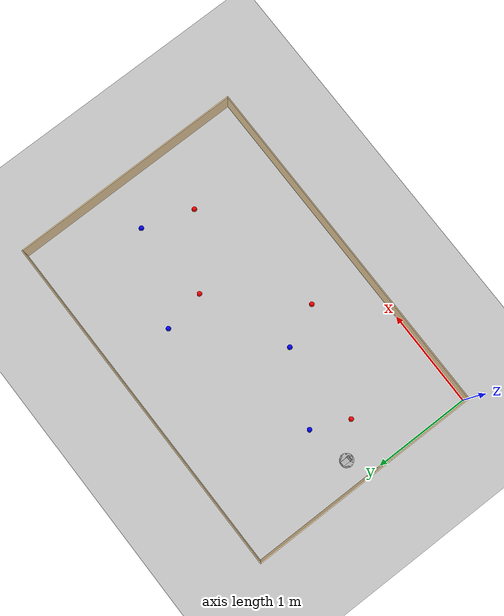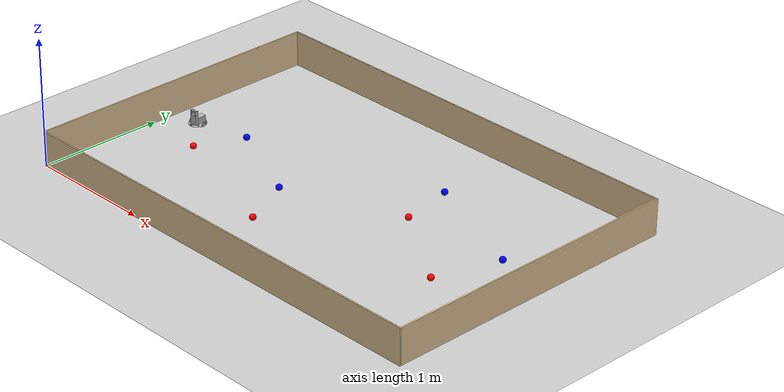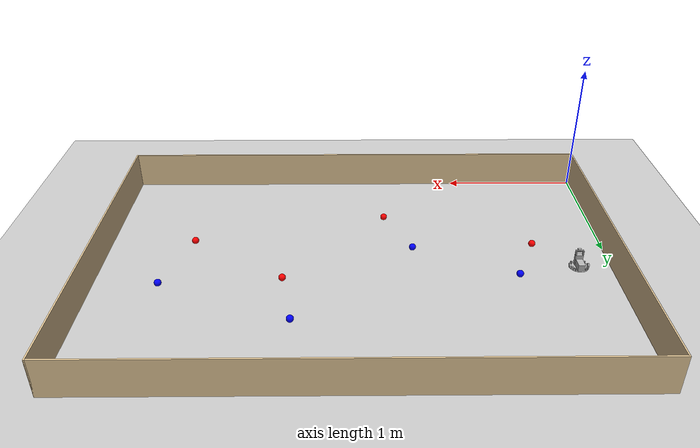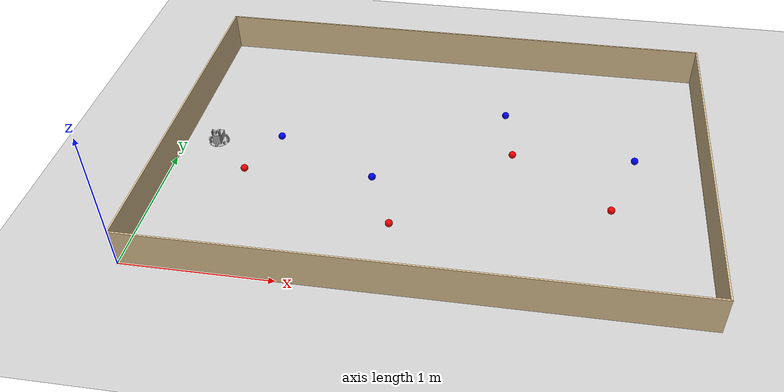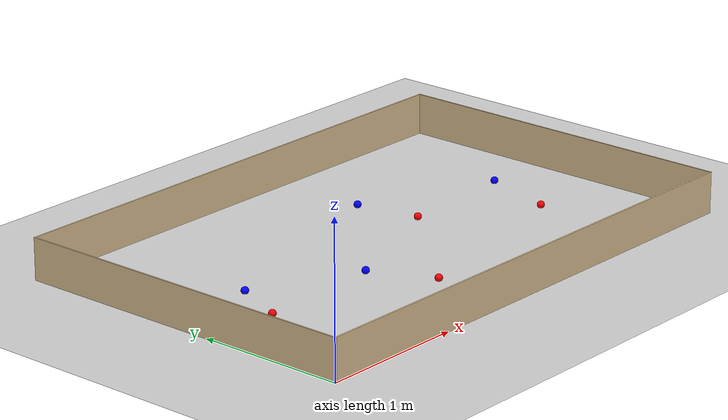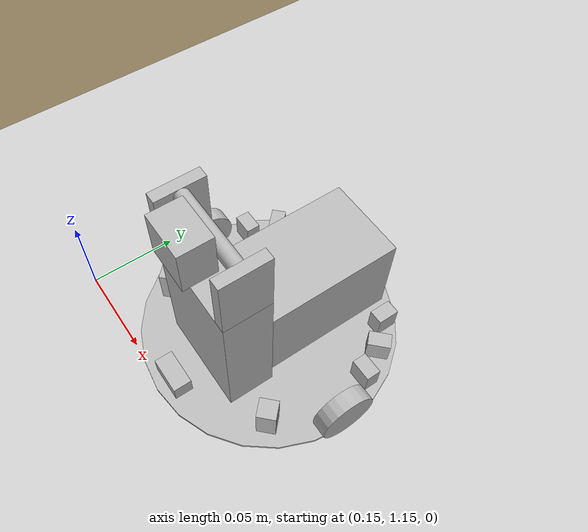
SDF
<?xml version="1.0" ?>
<sdf version="1.4">
  <world name="default">
    <scene>
      <ambient>0.5 0.5 0.5 1.0</ambient>
      <shadows>0</shadows>
    </scene>
    <include>
      <uri>model://ground_plane</uri>
    </include>
    <include>
      <uri>model://sun</uri>
    </include>
    <include>
      <uri>model://iti0201_robot</uri>
      <name>iti0201_robot</name>
      <pose>0.232 1.216 0 0 0 -1.57</pose> <!-- this is the robot's starting position, if you know where it should be, you can change this -->
    </include>

    <model name='sphere_blue1'>
      <static>0</static>
      <link name='body'>
        <inertial>
          <mass>0.06</mass>
          <inertia>
            <ixx>0.001</ixx>
            <iyy>0.001</iyy>
            <izz>0.001</izz>
            <ixy>0</ixy>
            <ixz>0</ixz>
            <iyz>0</iyz>
          </inertia>
          <pose>0 0 0 0 -0 0</pose>
        </inertial>
        <visual name='vis'>
          <geometry>
            <mesh>
              <uri>model://sphere_blue/sphere.dae</uri>
            </mesh>
          </geometry>
        </visual>
        <collision name='col'>
          <pose>0 0 0.025 0 -0 0</pose>
          <geometry>
            <box>
              <size>0.05 0.05 0.05</size>
            </box>
          </geometry>
          <surface>
            <friction>
              <ode>
                <mu>0.1</mu>
                <mu2>0.1</mu2>
                <slip1>0.9</slip1>
                <slip2>0.9</slip2>
              </ode>
              <torsional>
                <ode/>
              </torsional>
            </friction>
            <contact>
              <ode/>
            </contact>
            <bounce/>
          </surface>
          <max_contacts>10</max_contacts>
        </collision>
        <self_collide>0</self_collide>
        <enable_wind>0</enable_wind>
        <kinematic>0</kinematic>
      </link>
      <pose>0.66839 1.314293 0 0 -0 0</pose>
    </model>
    <model name='sphere_red1'>
      <static>0</static>
      <link name='body'>
        <inertial>
          <mass>0.06</mass>
          <inertia>
            <ixx>0.001</ixx>
            <iyy>0.001</iyy>
            <izz>0.001</izz>
            <ixy>0</ixy>
            <ixz>0</ixz>
            <iyz>0</iyz>
          </inertia>
          <pose>0 0 0 0 -0 0</pose>
        </inertial>
        <visual name='vis'>
          <geometry>
            <mesh>
              <uri>model://sphere_red/sphere.dae</uri>
            </mesh>
          </geometry>
        </visual>
        <collision name='col'>
          <pose>0 0 0.025 0 -0 0</pose>
          <geometry>
            <box>
              <size>0.05 0.05 0.05</size>
            </box>
          </geometry>
          <surface>
            <friction>
              <ode>
                <mu>0.1</mu>
                <mu2>0.1</mu2>
                <slip1>0.9</slip1>
                <slip2>0.9</slip2>
              </ode>
              <torsional>
                <ode/>
              </torsional>
            </friction>
            <contact>
              <ode/>
            </contact>
            <bounce/>
          </surface>
          <max_contacts>10</max_contacts>
        </collision>
        <self_collide>0</self_collide>
        <enable_wind>0</enable_wind>
        <kinematic>0</kinematic>
      </link>
      <pose>0.507113 0.943609 0 0 -0 0</pose>
    </model>
    <model name='sphere_blue2'>
      <static>0</static>
      <link name='body'>
        <inertial>
          <mass>0.06</mass>
          <inertia>
            <ixx>0.001</ixx>
            <iyy>0.001</iyy>
            <izz>0.001</izz>
            <ixy>0</ixy>
            <ixz>0</ixz>
            <iyz>0</iyz>
          </inertia>
          <pose>0 0 0 0 -0 0</pose>
        </inertial>
        <visual name='vis'>
          <geometry>
            <mesh>
              <uri>model://sphere_blue/sphere.dae</uri>
            </mesh>
          </geometry>
        </visual>
        <collision name='col'>
          <pose>0 0 0.025 0 -0 0</pose>
          <geometry>
            <box>
              <size>0.05 0.05 0.05</size>
            </box>
          </geometry>
          <surface>
            <friction>
              <ode>
                <mu>0.1</mu>
                <mu2>0.1</mu2>
                <slip1>0.9</slip1>
                <slip2>0.9</slip2>
              </ode>
              <torsional>
                <ode/>
              </torsional>
            </friction>
            <contact>
              <ode/>
            </contact>
            <bounce/>
          </surface>
          <max_contacts>10</max_contacts>
        </collision>
        <self_collide>0</self_collide>
        <enable_wind>0</enable_wind>
        <kinematic>0</kinematic>
      </link>
      <pose>1.39371 0.981180 0 0 -0 0</pose>
    </model>
    <model name='sphere_red2'>
      <static>0</static>
      <link name='body'>
        <inertial>
          <mass>0.06</mass>
          <inertia>
            <ixx>0.001</ixx>
            <iyy>0.001</iyy>
            <izz>0.001</izz>
            <ixy>0</ixy>
            <ixz>0</ixz>
            <iyz>0</iyz>
          </inertia>
          <pose>0 0 0 0 -0 0</pose>
        </inertial>
        <visual name='vis'>
          <geometry>
            <mesh>
              <uri>model://sphere_red/sphere.dae</uri>
            </mesh>
          </geometry>
        </visual>
        <collision name='col'>
          <pose>0 0 0.025 0 -0 0</pose>
          <geometry>
            <box>
              <size>0.05 0.05 0.05</size>
            </box>
          </geometry>
          <surface>
            <friction>
              <ode>
                <mu>0.1</mu>
                <mu2>0.1</mu2>
                <slip1>0.9</slip1>
                <slip2>0.9</slip2>
              </ode>
              <torsional>
                <ode/>
              </torsional>
            </friction>
            <contact>
              <ode/>
            </contact>
            <bounce/>
          </surface>
          <max_contacts>10</max_contacts>
        </collision>
        <self_collide>0</self_collide>
        <enable_wind>0</enable_wind>
        <kinematic>0</kinematic>
      </link>
      <pose>1.589068 0.562921 0 0 -0 0</pose>
    </model>
    <model name='sphere_blue3'>
      <static>0</static>
      <link name='body'>
        <inertial>
          <mass>0.06</mass>
          <inertia>
            <ixx>0.001</ixx>
            <iyy>0.001</iyy>
            <izz>0.001</izz>
            <ixy>0</ixy>
            <ixz>0</ixz>
            <iyz>0</iyz>
          </inertia>
          <pose>0 0 0 0 -0 0</pose>
        </inertial>
        <visual name='vis'>
          <geometry>
            <mesh>
              <uri>model://sphere_blue/sphere.dae</uri>
            </mesh>
          </geometry>
        </visual>
        <collision name='col'>
          <pose>0 0 0.025 0 -0 0</pose>
          <geometry>
            <box>
              <size>0.05 0.05 0.05</size>
            </box>
          </geometry>
          <surface>
            <friction>
              <ode>
                <mu>0.1</mu>
                <mu2>0.1</mu2>
                <slip1>0.9</slip1>
                <slip2>0.9</slip2>
              </ode>
              <torsional>
                <ode/>
              </torsional>
            </friction>
            <contact>
              <ode/>
            </contact>
            <bounce/>
          </surface>
          <max_contacts>10</max_contacts>
        </collision>
        <self_collide>0</self_collide>
        <enable_wind>0</enable_wind>
        <kinematic>0</kinematic>
      </link>
      <pose>2.237236 1.780654 0 0 -0 0</pose>
    </model>
    <model name='sphere_red3'>
      <static>0</static>
      <link name='body'>
        <inertial>
          <mass>0.06</mass>
          <inertia>
            <ixx>0.001</ixx>
            <iyy>0.001</iyy>
            <izz>0.001</izz>
            <ixy>0</ixy>
            <ixz>0</ixz>
            <iyz>0</iyz>
          </inertia>
          <pose>0 0 0 0 -0 0</pose>
        </inertial>
        <visual name='vis'>
          <geometry>
            <mesh>
              <uri>model://sphere_red/sphere.dae</uri>
            </mesh>
          </geometry>
        </visual>
        <collision name='col'>
          <pose>0 0 0.025 0 -0 0</pose>
          <geometry>
            <box>
              <size>0.05 0.05 0.05</size>
            </box>
          </geometry>
          <surface>
            <friction>
              <ode>
                <mu>0.1</mu>
                <mu2>0.1</mu2>
                <slip1>0.9</slip1>
                <slip2>0.9</slip2>
              </ode>
              <torsional>
                <ode/>
              </torsional>
            </friction>
            <contact>
              <ode/>
            </contact>
            <bounce/>
          </surface>
          <max_contacts>10</max_contacts>
        </collision>
        <self_collide>0</self_collide>
        <enable_wind>0</enable_wind>
        <kinematic>0</kinematic>
      </link>
      <pose>2.321770 1.344883 0 0 -0 0</pose>
    </model>
    <model name='sphere_blue4'>
      <static>0</static>
      <link name='body'>
        <inertial>
          <mass>0.06</mass>
          <inertia>
            <ixx>0.001</ixx>
            <iyy>0.001</iyy>
            <izz>0.001</izz>
            <ixy>0</ixy>
            <ixz>0</ixz>
            <iyz>0</iyz>
          </inertia>
          <pose>0 0 0 0 -0 0</pose>
        </inertial>
        <visual name='vis'>
          <geometry>
            <mesh>
              <uri>model://sphere_blue/sphere.dae</uri>
            </mesh>
          </geometry>
        </visual>
        <collision name='col'>
          <pose>0 0 0.025 0 -0 0</pose>
          <geometry>
            <box>
              <size>0.05 0.05 0.05</size>
            </box>
          </geometry>
          <surface>
            <friction>
              <ode>
                <mu>0.1</mu>
                <mu2>0.1</mu2>
                <slip1>0.9</slip1>
                <slip2>0.9</slip2>
              </ode>
              <torsional>
                <ode/>
              </torsional>
            </friction>
            <contact>
              <ode/>
            </contact>
            <bounce/>
          </surface>
          <max_contacts>10</max_contacts>
        </collision>
        <self_collide>0</self_collide>
        <enable_wind>0</enable_wind>
        <kinematic>0</kinematic>
      </link>
      <pose>3.16757 1.39786 0 0 -0 0</pose>
    </model>
    <model name='sphere_red4'>
      <static>0</static>
      <link name='body'>
        <inertial>
          <mass>0.06</mass>
          <inertia>
            <ixx>0.001</ixx>
            <iyy>0.001</iyy>
            <izz>0.001</izz>
            <ixy>0</ixy>
            <ixz>0</ixz>
            <iyz>0</iyz>
          </inertia>
          <pose>0 0 0 0 -0 0</pose>
        </inertial>
        <visual name='vis'>
          <geometry>
            <mesh>
              <uri>model://sphere_red/sphere.dae</uri>
            </mesh>
          </geometry>
        </visual>
        <collision name='col'>
          <pose>0 0 0.025 0 -0 0</pose>
          <geometry>
            <box>
              <size>0.05 0.05 0.05</size>
            </box>
          </geometry>
          <surface>
            <friction>
              <ode>
                <mu>0.1</mu>
                <mu2>0.1</mu2>
                <slip1>0.9</slip1>
                <slip2>0.9</slip2>
              </ode>
              <torsional>
                <ode/>
              </torsional>
            </friction>
            <contact>
              <ode/>
            </contact>
            <bounce/>
          </surface>
          <max_contacts>10</max_contacts>
        </collision>
        <self_collide>0</self_collide>
        <enable_wind>0</enable_wind>
        <kinematic>0</kinematic>
      </link>
      <pose>3.00375 0.883783 0 0 -0 0</pose>
    </model>

    <model name='outer_box'>
    <pose frame=''>1.81 1.21 0 0 -0 0</pose>
    <link name='Wall_0'>
      <collision name='Wall_0_Collision'>
        <geometry>
          <box>
            <size>3.63 0.01 0.28</size>
          </box>
        </geometry>
        <pose frame=''>0 0 0.14 0 -0 0</pose>
      </collision>
      <visual name='Wall_0_Visual'>
        <pose frame=''>0 0 0.14 0 -0 0</pose>
        <geometry>
          <box>
            <size>3.63 0.01 0.28</size>
          </box>
        </geometry>
        <material>
          <script>
            <uri>file://media/materials/scripts/gazebo.material</uri>
            <name>Gazebo/Grey</name>
          </script>
          <ambient>0.921569 0.807843 0.615686 1</ambient>
        </material>
        <meta>
          <layer>0</layer>
        </meta>
      </visual>
      <pose frame=''>0 1.21 0 0 -0 0</pose>
    </link>
    <link name='Wall_2'>
      <collision name='Wall_2_Collision'>
        <geometry>
          <box>
            <size>2.43 0.01 0.28</size>
          </box>
        </geometry>
        <pose frame=''>0 0 0.14 0 -0 0</pose>
      </collision>
      <visual name='Wall_2_Visual'>
        <pose frame=''>0 0 0.14 0 -0 0</pose>
        <geometry>
          <box>
            <size>2.43 0.01 0.28</size>
          </box>
        </geometry>
        <material>
          <script>
            <uri>file://media/materials/scripts/gazebo.material</uri>
            <name>Gazebo/Grey</name>
          </script>
          <ambient>0.921569 0.807843 0.615686 1</ambient>
        </material>
        <meta>
          <layer>0</layer>
        </meta>
      </visual>
      <pose frame=''>1.81 0 0 0 0 -1.5708</pose>
    </link>
    <link name='Wall_4'>
      <collision name='Wall_4_Collision'>
        <geometry>
          <box>
            <size>3.63 0.01 0.28</size>
          </box>
        </geometry>
        <pose frame=''>0 0 0.14 0 -0 0</pose>
      </collision>
      <visual name='Wall_4_Visual'>
        <pose frame=''>0 0 0.14 0 -0 0</pose>
        <geometry>
          <box>
            <size>3.63 0.01 0.28</size>
          </box>
        </geometry>
        <material>
          <script>
            <uri>file://media/materials/scripts/gazebo.material</uri>
            <name>Gazebo/Grey</name>
          </script>
          <ambient>0.921569 0.807843 0.615686 1</ambient>
        </material>
        <meta>
          <layer>0</layer>
        </meta>
      </visual>
      <pose frame=''>0 -1.21 0 0 -0 3.14159</pose>
    </link>
    <link name='Wall_6'>
      <collision name='Wall_6_Collision'>
        <geometry>
          <box>
            <size>2.43 0.01 0.28</size>
          </box>
        </geometry>
        <pose frame=''>0 0 0.14 0 -0 0</pose>
      </collision>
      <visual name='Wall_6_Visual'>
        <pose frame=''>0 0 0.14 0 -0 0</pose>
        <geometry>
          <box>
            <size>2.43 0.01 0.28</size>
          </box>
        </geometry>
        <material>
          <script>
            <uri>file://media/materials/scripts/gazebo.material</uri>
            <name>Gazebo/Grey</name>
          </script>
          <ambient>0.921569 0.807843 0.615686 1</ambient>
        </material>
        <meta>
          <layer>0</layer>
        </meta>
      </visual>
      <pose frame=''>-1.81 0 0 0 -0 1.5708</pose>
    </link>
    <static>1</static>
  </model>

  </world>
</sdf>

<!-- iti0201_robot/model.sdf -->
<sdf version='1.4'>
  	<model name="iti0201_robot">
  		<static>false</static>

      <!-- LINK 1: Chassis, connect wheels and base to this. -->
      <link name="chassis">
        <pose>0 0 0.0152 0 0 0</pose>
      </link>

      <joint type="fixed" name="chassis_to_base">
        <pose>0 0 0 0 0 0</pose>
        <child>base</child>
        <parent>chassis</parent>
        <axis>
          <xyz>0 0 0</xyz>
        </axis>
      </joint>

      <!-- LINK 2: Base, contains caster wheels, base, brainbox and base for camera stand. -->
  		<link name='base'>
        <pose>0 0 .006 0 0 0</pose>

          <inertial>
            <mass>50</mass>
          </inertial>

          <collision name='base_collision'>
            <geometry>
              <cylinder>
                <radius>.069912</radius>
                <length>0.001591</length>
              </cylinder>
            </geometry>
          </collision>

          <visual name='base_visual'>
            <geometry>
              <cylinder>
                <radius>.069912</radius>
                <length>0.001591</length>
              </cylinder>
            </geometry>
          </visual>

          <collision name="brainbox_collision">
            <pose>-0.022 0 0.02641535 0 0 0</pose>
            <geometry>
              <box>
                <size>.077304 .0468221 .0512397</size>
              </box>
            </geometry>
          </collision>

          <visual name="brainbox_visual">
            <pose>-0.022 0 0.02641535 0 0 0</pose>
            <geometry>
              <box>
                <size>.077304 .0468221 .0512397</size>
              </box>
            </geometry>
          </visual>

          <collision name="camera_stand_collision">
            <pose>0.02940475 0 0.0402758 0 0 0</pose>
            <geometry>
              <box>
                <size>.0255021 .0553499 .0789606</size>
              </box>
            </geometry>
          </collision>

          <visual name="camera_stand_visual">
            <pose>0.02940475 0 0.0402758 0 0 0</pose>
            <geometry>
              <box>
                <size>.0255021 .0553499 .0789606</size>
              </box>
            </geometry>
          </visual>

          <collision name="camera_stand_right_wall_collision">
          <pose>0.02940475 -0.02467495 0.0970561 0 0 0</pose>
            <geometry>
              <box>
                <size>.0255021 .006 .0346</size>
              </box>
            </geometry>
          </collision>

          <visual name="camera_stand_right_wall_visual">
          <pose>0.02940475 -0.02467495 0.0970561 0 0 0</pose>
            <geometry>
              <box>
                <size>.0255021 .006 .0346</size>
              </box>
            </geometry>
          </visual>

          <collision name="camera_stand_left_wall_collision">
          <pose>0.02940475 0.02467495 0.0970561 0 0 0</pose>
            <geometry>
              <box>
                <size>.0255021 .006 .0346</size>
              </box>
            </geometry>
          </collision>

          <visual name="camera_stand_left_wall_visual">
          <pose>0.02940475 0.02467495 0.0970561 0 0 0</pose>
            <geometry>
              <box>
                <size>.0255021 .006 .0346</size>
              </box>
            </geometry>
          </visual>

          <collision name='front_caster_collision'>
            <pose>0.035 0 -0.001 0 0 0</pose>
            <geometry>
                <sphere>
                <radius>.004648</radius>
              </sphere>
            </geometry>

            <surface>
              <friction>
                <ode>
                  <mu>0</mu>
                  <mu2>0</mu2>
                  <slip1>1.0</slip1>
                  <slip2>1.0</slip2>
                </ode>
              </friction>
            </surface>
          </collision>

          <visual name='front_caster_visual'>
            <pose>0.035 0 -0.001 0 0 0</pose>
            <geometry>
              <sphere>
                <radius>.004648</radius>
              </sphere>
            </geometry>
          </visual>

          <collision name='rear_caster_collision'>
            <pose>-0.035 0 -0.001 0 0 0</pose>
            <geometry>
                <sphere>
                <radius>.004648</radius>
              </sphere>
            </geometry>

            <surface>
              <friction>
                <ode>
                  <mu>0</mu>
                  <mu2>0</mu2>
                  <slip1>1.0</slip1>
                  <slip2>1.0</slip2>
                </ode>
              </friction>
            </surface>
          </collision>

          <visual name='rear_caster_visual'>
            <pose>-0.035 0 -0.001 0 0 0</pose>
            <geometry>
              <sphere>
                <radius>.004648</radius>
              </sphere>
            </geometry>
          </visual>
      </link>

      <!-- LINKS 3-11: Infrared sensors. -->
      <link name="front_right_45deg_ir">
        <pose>0.0326151 -0.0470558 0.0167955 0 0 0.78535</pose>
        <collision name="collision">
          <geometry>
            <box>
              <size>.01 .01 .02</size>
            </box>
          </geometry>
        </collision>
        <visual name="visual">
          <geometry>
            <box>
              <size>.01 .01 .02</size>
            </box>
          </geometry>
        </visual>
      </link>

      <joint type="fixed" name="front_right_45deg_ir_to_base">
        <pose>0 0 0 0 0 0</pose>
        <child>front_right_45deg_ir</child>
        <parent>base</parent>
      </joint>

      <link name="front_middle_ir">
        <pose>0.059312 0 0.0117955 0 0 0</pose>
        <collision name="collision">
          <geometry>
            <box>
              <size>.01 .02 .01</size>
            </box>
          </geometry>
        </collision>
        <visual name="visual">
          <geometry>
            <box>
              <size>.01 .02 .01</size>
            </box>
          </geometry>
        </visual>
      </link>

      <joint type="fixed" name="front_middle_ir_to_base">
        <pose>0 0 0 0 0 0</pose>
        <child>front_middle_ir</child>
        <parent>base</parent>
      </joint>

      <link name="front_left_45deg_ir">
        <pose>0.0326151 0.0470558 0.0167955 0 0 0.78535</pose>
        <collision name="collision">
          <geometry>
            <box>
              <size>.01 .01 .02</size>
            </box>
          </geometry>
        </collision>
        <visual name="visual">
          <geometry>
            <box>
              <size>.01 .01 .02</size>
            </box>
          </geometry>
        </visual>
      </link>

      <joint type="fixed" name="front_left_45deg_ir_to_base">
        <pose>0 0 0 0 0 0</pose>
        <child>front_left_45deg_ir</child>
        <parent>base</parent>
      </joint>

      <link name="rear_right_90deg_ir">
        <pose>-0.0225688 -0.054749 0.014341 0 0 0</pose>
        <collision name="collision">
          <geometry>
            <box>
              <size>.008 .012 .0135</size>
            </box>
          </geometry>
        </collision>
        <visual name="visual">
          <geometry>
            <box>
              <size>.008 .012 .0135</size>
            </box>
          </geometry>
        </visual>
      </link>

      <joint type="fixed" name="rear_right_90deg_ir_to_base">
        <pose>0 0 0 0 0 0</pose>
        <child>rear_right_90deg_ir</child>
        <parent>base</parent>
      </joint>

      <link name="rear_right_45deg_ir">
        <pose>-0.037845 -0.046812 0.014341 0 0 -0.78535</pose>
        <collision name="collision">
          <geometry>
            <box>
              <size>.008 .012 .0135</size>
            </box>
          </geometry>
        </collision>
        <visual name="visual">
          <geometry>
            <box>
              <size>.008 .012 .0135</size>
            </box>
          </geometry>
        </visual>
      </link>

      <joint type="fixed" name="rear_right_45deg_ir_to_base">
        <pose>0 0 0 0 0 0</pose>
        <child>rear_right_45deg_ir</child>
        <parent>base</parent>
      </joint>

      <link name="rear_right_straight_ir">
        <pose>-0.0501109 -0.035473 0.014341 0 0 1.5707</pose>
        <collision name="collision">
          <geometry>
            <box>
              <size>.008 .012 .0135</size>
            </box>
          </geometry>
        </collision>
        <visual name="visual">
          <geometry>
            <box>
              <size>.008 .012 .0135</size>
            </box>
          </geometry>
        </visual>
      </link>

      <joint type="fixed" name="rear_right_straight_ir_to_base">
        <pose>0 0 0 0 0 0</pose>
        <child>rear_right_straight_ir</child>
        <parent>base</parent>
      </joint>

      <link name="rear_left_90deg_ir">
        <pose>-0.0225688 0.054749 0.014341 0 0 0</pose>
        <collision name="collision">
          <geometry>
            <box>
              <size>.008 .012 .0135</size>
            </box>
          </geometry>
        </collision>
        <visual name="visual">
          <geometry>
            <box>
              <size>.008 .012 .0135</size>
            </box>
          </geometry>
        </visual>
      </link>

      <joint type="fixed" name="rear_left_90deg_ir_to_base">
        <pose>0 0 0 0 0 0</pose>
        <child>rear_left_90deg_ir</child>
        <parent>base</parent>
      </joint>

      <link name="rear_left_45deg_ir">
        <pose>-0.037845 0.046812 0.014341 0 0 0.78535</pose>
        <collision name="collision">
          <geometry>
            <box>
              <size>.008 .012 .0135</size>
            </box>
          </geometry>
        </collision>
        <visual name="visual">
          <geometry>
            <box>
              <size>.008 .012 .0135</size>
            </box>
          </geometry>
        </visual>
      </link>

      <joint type="fixed" name="rear_left_45deg_ir_to_base">
        <pose>0 0 0 0 0 0</pose>
        <child>rear_left_45deg_ir</child>
        <parent>base</parent>
      </joint>

      <link name="rear_left_straight_ir">
        <pose>-0.0501109 0.035473 0.014341 0 0 1.5707</pose>
        <collision name="collision">
          <geometry>
            <box>
              <size>.008 .012 .0135</size>
            </box>
          </geometry>
        </collision>
        <visual name="visual">
          <geometry>
            <box>
              <size>.008 .012 .0135</size>
            </box>
          </geometry>
        </visual>
      </link>

      <joint type="fixed" name="rear_left_straight_ir_to_base">
        <pose>0 0 0 0 0 0</pose>
        <child>rear_left_straight_ir</child>
        <parent>base</parent>
      </joint>

      <!-- LINKS 12-17: Line following sensors. -->
      <link name="right_side_first_line_sensor_from_middle">
        <pose>-0.06289935 -0.005 0.0044545 0 0 0</pose>
        <collision name="collision">
          <geometry>
            <box>
              <size>.0025 .0035 .0015</size>
            </box>
          </geometry>
        </collision>
        <visual name="visual">
          <geometry>
            <box>
              <size>.0025 .0035 .0015</size>
            </box>
          </geometry>
        </visual>
      </link>

      <joint type="fixed" name="right_side_first_line_sensor_from_middle_to_base">
        <pose>0 0 0 0 0 0</pose>
        <child>right_side_first_line_sensor_from_middle</child>
        <parent>base</parent>
      </joint>

      <link name="left_side_first_line_sensor_from_middle">
        <pose>-0.06289935 0.005 0.0044545 0 0 0</pose>
        <collision name="collision">
          <geometry>
            <box>
              <size>.0025 .0035 .0015</size>
            </box>
          </geometry>
        </collision>
        <visual name="visual">
          <geometry>
            <box>
              <size>.0025 .0035 .0015</size>
            </box>
          </geometry>
        </visual>
      </link>

      <joint type="fixed" name="left_side_first_line_sensor_from_middle_to_base">
        <pose>0 0 0 0 0 0</pose>
        <child>left_side_first_line_sensor_from_middle</child>
        <parent>base</parent>
      </joint>

      <link name="right_side_second_line_sensor_from_middle">
        <pose>-0.06289935 -0.015 0.0044545 0 0 0</pose>
        <collision name="collision">
          <geometry>
            <box>
              <size>.0025 .0035 .0015</size>
            </box>
          </geometry>
        </collision>
        <visual name="visual">
          <geometry>
            <box>
              <size>.0025 .0035 .0015</size>
            </box>
          </geometry>
        </visual>
      </link>

      <joint type="fixed" name="right_side_second_line_sensor_from_middle_to_base">
        <pose>0 0 0 0 0 0</pose>
        <child>right_side_second_line_sensor_from_middle</child>
        <parent>base</parent>
      </joint>

      <link name="left_side_second_line_sensor_from_middle">
        <pose>-0.06289935 0.015 0.0044545 0 0 0</pose>
        <collision name="collision">
          <geometry>
            <box>
              <size>.0025 .0035 .0015</size>
            </box>
          </geometry>
        </collision>
        <visual name="visual">
          <geometry>
            <box>
              <size>.0025 .0035 .0015</size>
            </box>
          </geometry>
        </visual>
      </link>

      <joint type="fixed" name="left_side_second_line_sensor_from_middle_to_base">
        <pose>0 0 0 0 0 0</pose>
        <child>left_side_second_line_sensor_from_middle</child>
        <parent>base</parent>
      </joint>

      <link name="right_side_third_line_sensor_from_middle">
        <pose>-0.05410292 -0.035 0.0044545 0 0 0</pose>
        <collision name="collision">
          <geometry>
            <box>
              <size>.0025 .0035 .0015</size>
            </box>
          </geometry>
        </collision>
        <visual name="visual">
          <geometry>
            <box>
              <size>.0025 .0035 .0015</size>
            </box>
          </geometry>
        </visual>
      </link>

      <joint type="fixed" name="right_side_third_line_sensor_from_middle_to_base">
        <pose>0 0 0 0 0 0</pose>
        <child>right_side_third_line_sensor_from_middle</child>
        <parent>base</parent>
      </joint>

      <link name="left_side_third_line_sensor_from_middle">
        <pose>-0.05410292 0.035 0.0044545 0 0 0</pose>
        <collision name="collision">
          <geometry>
            <box>
              <size>.0025 .0035 .0015</size>
            </box>
          </geometry>
        </collision>
        <visual name="visual">
          <geometry>
            <box>
              <size>.0025 .0035 .0015</size>
            </box>
          </geometry>
        </visual>
      </link>

      <joint type="fixed" name="left_side_third_line_sensor_from_middle_to_base">
        <pose>0 0 0 0 0 0</pose>
        <child>left_side_third_line_sensor_from_middle</child>
        <parent>base</parent>
      </joint>

      <!-- LINKS 18-19: Camera. -->
      <link name="camera_stand_pole">
        <pose>0.02940475 0 0.1165341 0 1.5707 1.5707</pose>
        <collision name="collision">
          <geometry>
            <cylinder>
              <radius>.003822</radius>
              <length>.0433499</length>
            </cylinder>
          </geometry>
        </collision>
        <visual name="visual">
          <geometry>
            <cylinder>
              <radius>.003822</radius>
              <length>.0433499</length>
            </cylinder>
          </geometry>
        </visual>
      </link>

      <joint type="fixed" name="camera_stand_pole_to_base">
        <pose>0 0 0 0 0 0</pose>
        <child>camera_stand_pole</child>
        <parent>base</parent>
      </joint>

      <link name="camera">
        <pose>0.04140475 0 0.1168561 0 1.5707 0</pose>
        <collision name="collision">
          <geometry>
            <box>
              <size>.024 .024 .017</size>
            </box>
          </geometry>
        </collision>
        <visual name="visual">
          <geometry>
            <box>
              <size>.024 .024 .017</size>
            </box>
          </geometry>
        </visual>
      </link>

      <joint type="fixed" name="camera">
        <pose>0 0 0 0 0 0</pose>
        <child>camera</child>
        <parent>camera_stand_pole</parent>
      </joint>

      <!-- LINKS 20-21: Wheels. -->
     	<link name="right_wheel">
        <pose>0 -0.0655005 0.0152 0 1.5707 1.5707</pose>
        <collision name="collision">
          <geometry>
            <cylinder>
              <radius>.0152</radius>
              <length>.009</length>
            </cylinder>
          </geometry>

          <surface>
            <friction>
               <ode>
                  <!-- wheel friction coefficient -->
                  <mu>0.6</mu>
                  <!-- floor friction coefficient -->
                  <mu2>0.6</mu2>
               </ode>
            </friction>
          </surface>
        </collision>

        <inertial>
          <!-- don't know the real mass -->
          <mass>2</mass>
            <inertia>
              <!-- https://en.wikipedia.org/wiki/List_of_moments_of_inertia -->
              <ixx>0.00012902</ixx>
              <iyy>0.00012902</iyy>
              <izz>0.00023104</izz>
            </inertia>
        </inertial>

        <visual name="visual">
          <geometry>
            <cylinder>
              <radius>.0152</radius>
              <length>.009</length>
            </cylinder>
          </geometry>
        </visual>
    	</link>

      <joint type="revolute" name="right_wheel_hinge">
        <pose>0 0 -0.03 0 0 0</pose>
        <child>right_wheel</child>
        <parent>chassis</parent>
        <axis>
          <xyz>0 1 0</xyz>
        </axis>
      </joint>

    	<link name="left_wheel">
        <pose>0 0.0655005 0.0152 0 1.5707 1.5707</pose>
        <collision name="collision">
          <geometry>
            <cylinder>
              <radius>.0152</radius>
              <length>.009</length>
            </cylinder>
          </geometry>

          <surface>
            <friction>
               <ode>
                  <!-- wheel friction coefficient -->
                  <mu>0.6</mu>
                  <!-- floor friction coefficient -->
                  <mu2>0.6</mu2>
               </ode>
            </friction>
          </surface>
        </collision>

        <inertial>
          <!-- don't know the real mass -->
          <mass>2</mass>
            <inertia>
              <!-- https://en.wikipedia.org/wiki/List_of_moments_of_inertia -->
              <ixx>0.00012902</ixx>
              <iyy>0.00012902</iyy>
              <izz>0.00023104</izz>
            </inertia>
        </inertial>

        <visual name="visual">
          <geometry>
            <cylinder>
              <radius>.0152</radius>
              <length>.009</length>
            </cylinder>
          </geometry>
        </visual>
      </link>

      <joint type="revolute" name="left_wheel_hinge">
        <pose>0 0 0.03 0 0 0</pose>
        <child>left_wheel</child>
        <parent>chassis</parent>
        <axis>
          <xyz>0 1 0</xyz>
        </axis>
      </joint>
      <plugin name="wheel_plugin" filename="libwheel_plugin.so"/>
  </model>
</sdf>
